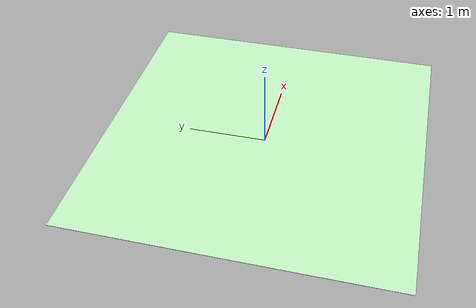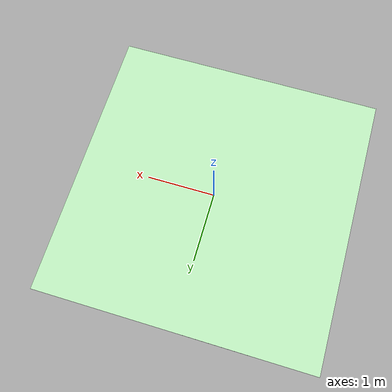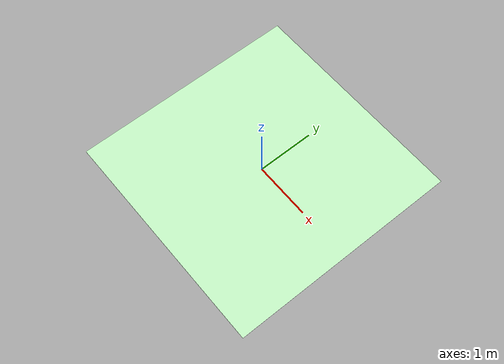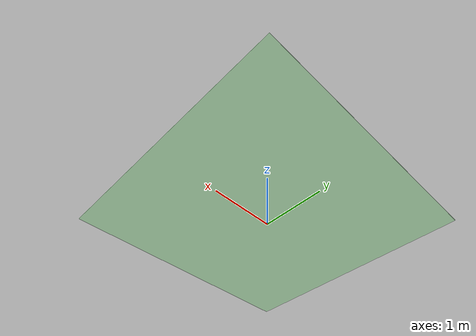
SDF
<?xml version="1.0"?>
<sdf version="1.6">
  <model name="logoJdeRobot">
    <static>true</static>
    <link name="link">
      <collision name="collision">
        <geometry>
          <plane>
            <normal>0 0 1</normal>
            <size>1 1</size>
          </plane>
        </geometry>
        <surface>
          <friction>
            <ode>
              <mu>0.5</mu>
              <mu2>.5</mu2>
            </ode>
          </friction>
        </surface>
      </collision>

      <visual name="visual_0">
        <pose>0 0 0.1 0 0 0</pose>

        <cast_shadows>false</cast_shadows>
        <geometry>
          <plane>
            <normal>0 0 1</normal>
            <size>4 4</size>
          </plane>
        </geometry>
        <material>
          <ambient>0.8 1.0 0.8 1.0</ambient>
          <diffuse>0.8 1.0 0.8 1.0</diffuse>
          <specular>0.1 0.1 0.1 1.0</specular>
          <pbr>
            <metal>
              <albedo_map>
                model://logoJdeRobot/materials/textures/logoJdeRobot.png</albedo_map>
            </metal>
          </pbr>
        </material>
      </visual>
    </link>
  </model>
</sdf>
